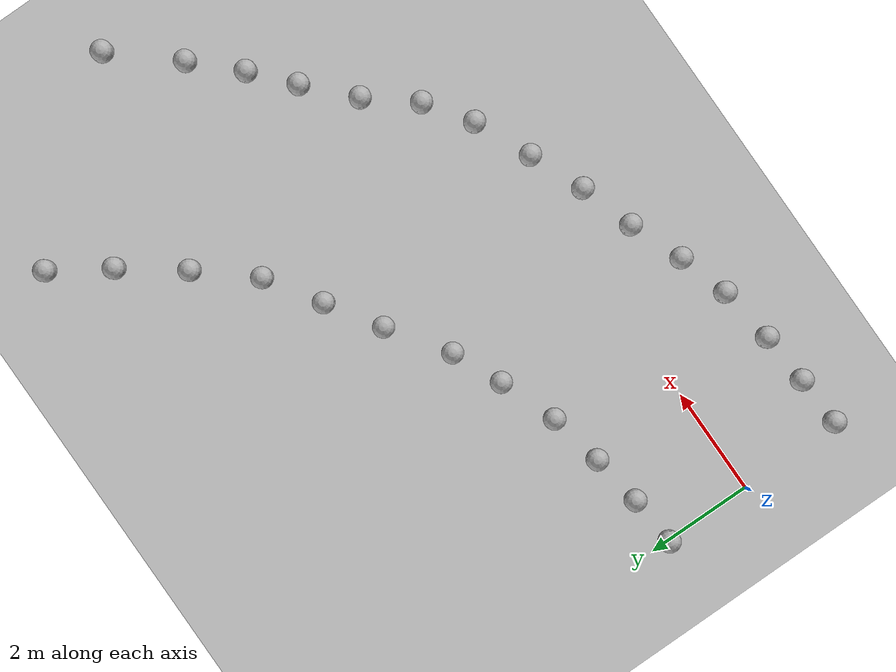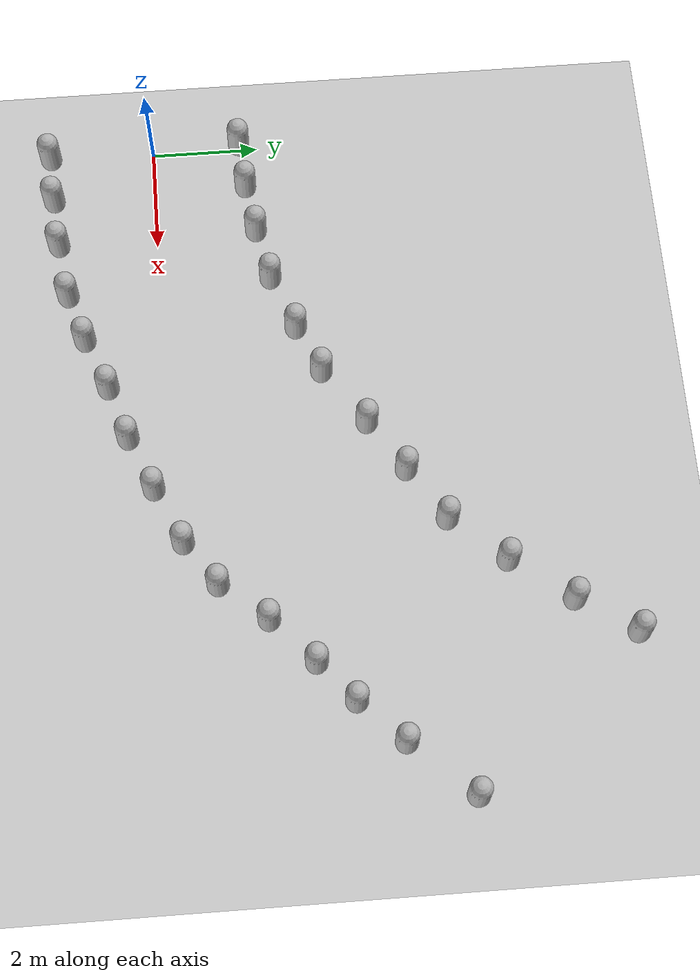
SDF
<sdf version='1.10'>
  <world name='empty'>
    <physics name='1ms' type='ignored'>
      <max_step_size>0.001</max_step_size>
      <real_time_factor>1</real_time_factor>
      <real_time_update_rate>1000</real_time_update_rate>
    </physics>
    <plugin name='gz::sim::systems::Physics' filename='gz-sim-physics-system'/>
    <plugin name='gz::sim::systems::UserCommands' filename='gz-sim-user-commands-system'/>
    <plugin name='gz::sim::systems::SceneBroadcaster' filename='gz-sim-scene-broadcaster-system'/>
    <plugin name='gz::sim::systems::Sensors' filename='gz-sim-sensors-system'>
      <render_engine>ogre2</render_engine>
    </plugin>
    <plugin name='gz::sim::systems::Contact' filename='gz-sim-contact-system'/>
    <gravity>0 0 -9.8000000000000007</gravity>
    <magnetic_field>5.5644999999999998e-06 2.2875799999999999e-05 -4.2388400000000002e-05</magnetic_field>
    <atmosphere type='adiabatic'/>
    <scene>
      <ambient>0.400000006 0.400000006 0.400000006 1</ambient>
      <background>0.699999988 0.699999988 0.699999988 1</background>
      <shadows>true</shadows>
    </scene>
    <model name='ground_plane'>
      <static>true</static>
      <link name='link'>
        <collision name='collision'>
          <geometry>
            <plane>
              <normal>0 0 1</normal>
              <size>100 100</size>
            </plane>
          </geometry>
          <surface>
            <friction>
              <ode/>
            </friction>
            <bounce/>
            <contact/>
          </surface>
        </collision>
        <visual name='visual'>
          <geometry>
            <plane>
              <normal>0 0 1</normal>
              <size>100 100</size>
            </plane>
          </geometry>
          <material>
            <ambient>0.800000012 0.800000012 0.800000012 1</ambient>
            <diffuse>0.800000012 0.800000012 0.800000012 1</diffuse>
            <specular>0.800000012 0.800000012 0.800000012 1</specular>
          </material>
        </visual>
        <pose>0 0 0 0 0 0</pose>
        <inertial>
          <pose>0 0 0 0 0 0</pose>
          <mass>1</mass>
          <inertia>
            <ixx>1</ixx>
            <ixy>0</ixy>
            <ixz>0</ixz>
            <iyy>1</iyy>
            <iyz>0</iyz>
            <izz>1</izz>
          </inertia>
        </inertial>
        <enable_wind>false</enable_wind>
      </link>
      <pose>0 0 0 0 0 0</pose>
      <self_collide>false</self_collide>
    </model>
    <model name='capsule'>
      <pose>0.0079092960798012868 1.6543923129827109 0.499999999902001 0 0 0</pose>
      <link name='capsule_link'>
        <inertial>
          <inertia>
            <ixx>0.074153999999999998</ixx>
            <ixy>0</ixy>
            <ixz>0</ixz>
            <iyy>0.074153999999999998</iyy>
            <iyz>0</iyz>
            <izz>0.018769000000000001</izz>
          </inertia>
          <mass>1</mass>
          <pose>0 0 0 0 0 0</pose>
        </inertial>
        <collision name='capsule_collision'>
          <geometry>
            <capsule>
              <radius>0.20000000000000001</radius>
              <length>0.59999999999999998</length>
            </capsule>
          </geometry>
          <surface>
            <friction>
              <ode/>
            </friction>
            <bounce/>
            <contact/>
          </surface>
        </collision>
        <visual name='capsule_visual'>
          <geometry>
            <capsule>
              <radius>0.20000000000000001</radius>
              <length>0.59999999999999998</length>
            </capsule>
          </geometry>
          <material>
            <ambient>0.300000012 0.300000012 0.300000012 1</ambient>
            <diffuse>0.699999988 0.699999988 0.699999988 1</diffuse>
            <specular>1 1 1 1</specular>
          </material>
        </visual>
        <pose>0 0 0 0 0 0</pose>
        <enable_wind>false</enable_wind>
      </link>
      <static>false</static>
      <self_collide>false</self_collide>
    </model>
    <model name='capsule_0'>
      <pose>0.94512511227716023 1.733680784439902 0.499999999902001 0 0 0</pose>
      <link name='capsule_link'>
        <inertial>
          <inertia>
            <ixx>0.074153999999999998</ixx>
            <ixy>0</ixy>
            <ixz>0</ixz>
            <iyy>0.074153999999999998</iyy>
            <iyz>0</iyz>
            <izz>0.018769000000000001</izz>
          </inertia>
          <mass>1</mass>
          <pose>0 0 0 0 0 0</pose>
        </inertial>
        <collision name='capsule_collision'>
          <geometry>
            <capsule>
              <radius>0.20000000000000001</radius>
              <length>0.59999999999999998</length>
            </capsule>
          </geometry>
          <surface>
            <friction>
              <ode/>
            </friction>
            <bounce/>
            <contact/>
          </surface>
        </collision>
        <visual name='capsule_visual'>
          <geometry>
            <capsule>
              <radius>0.20000000000000001</radius>
              <length>0.59999999999999998</length>
            </capsule>
          </geometry>
          <material>
            <ambient>0.300000012 0.300000012 0.300000012 1</ambient>
            <diffuse>0.699999988 0.699999988 0.699999988 1</diffuse>
            <specular>1 1 1 1</specular>
          </material>
        </visual>
        <pose>0 0 0 0 0 0</pose>
        <enable_wind>false</enable_wind>
      </link>
      <static>false</static>
      <self_collide>false</self_collide>
    </model>
    <model name='capsule_1'>
      <pose>1.9187066357914726 1.8748929251924817 0.499999999902001 0 0 0</pose>
      <link name='capsule_link'>
        <inertial>
          <inertia>
            <ixx>0.074153999999999998</ixx>
            <ixy>0</ixy>
            <ixz>0</ixz>
            <iyy>0.074153999999999998</iyy>
            <iyz>0</iyz>
            <izz>0.018769000000000001</izz>
          </inertia>
          <mass>1</mass>
          <pose>0 0 0 0 0 0</pose>
        </inertial>
        <collision name='capsule_collision'>
          <geometry>
            <capsule>
              <radius>0.20000000000000001</radius>
              <length>0.59999999999999998</length>
            </capsule>
          </geometry>
          <surface>
            <friction>
              <ode/>
            </friction>
            <bounce/>
            <contact/>
          </surface>
        </collision>
        <visual name='capsule_visual'>
          <geometry>
            <capsule>
              <radius>0.20000000000000001</radius>
              <length>0.59999999999999998</length>
            </capsule>
          </geometry>
          <material>
            <ambient>0.300000012 0.300000012 0.300000012 1</ambient>
            <diffuse>0.699999988 0.699999988 0.699999988 1</diffuse>
            <specular>1 1 1 1</specular>
          </material>
        </visual>
        <pose>0 0 0 0 0 0</pose>
        <enable_wind>false</enable_wind>
      </link>
      <static>false</static>
      <self_collide>false</self_collide>
    </model>
    <model name='capsule_2'>
      <pose>0.071174021114242758 -1.9452252499138223 0.499999999902001 0 0 0</pose>
      <link name='capsule_link'>
        <inertial>
          <inertia>
            <ixx>0.074153999999999998</ixx>
            <ixy>0</ixy>
            <ixz>0</ixz>
            <iyy>0.074153999999999998</iyy>
            <iyz>0</iyz>
            <izz>0.018769000000000001</izz>
          </inertia>
          <mass>1</mass>
          <pose>0 0 0 0 0 0</pose>
        </inertial>
        <collision name='capsule_collision'>
          <geometry>
            <capsule>
              <radius>0.20000000000000001</radius>
              <length>0.59999999999999998</length>
            </capsule>
          </geometry>
          <surface>
            <friction>
              <ode/>
            </friction>
            <bounce/>
            <contact/>
          </surface>
        </collision>
        <visual name='capsule_visual'>
          <geometry>
            <capsule>
              <radius>0.20000000000000001</radius>
              <length>0.59999999999999998</length>
            </capsule>
          </geometry>
          <material>
            <ambient>0.300000012 0.300000012 0.300000012 1</ambient>
            <diffuse>0.699999988 0.699999988 0.699999988 1</diffuse>
            <specular>1 1 1 1</specular>
          </material>
        </visual>
        <pose>0 0 0 0 0 0</pose>
        <enable_wind>false</enable_wind>
      </link>
      <static>false</static>
      <self_collide>false</self_collide>
    </model>
    <model name='capsule_3'>
      <pose>1.0079840875515076 -1.8969727998720727 0.499999999902001 0 0 0</pose>
      <link name='capsule_link'>
        <inertial>
          <inertia>
            <ixx>0.074153999999999998</ixx>
            <ixy>0</ixy>
            <ixz>0</ixz>
            <iyy>0.074153999999999998</iyy>
            <iyz>0</iyz>
            <izz>0.018769000000000001</izz>
          </inertia>
          <mass>1</mass>
          <pose>0 0 0 0 0 0</pose>
        </inertial>
        <collision name='capsule_collision'>
          <geometry>
            <capsule>
              <radius>0.20000000000000001</radius>
              <length>0.59999999999999998</length>
            </capsule>
          </geometry>
          <surface>
            <friction>
              <ode/>
            </friction>
            <bounce/>
            <contact/>
          </surface>
        </collision>
        <visual name='capsule_visual'>
          <geometry>
            <capsule>
              <radius>0.20000000000000001</radius>
              <length>0.59999999999999998</length>
            </capsule>
          </geometry>
          <material>
            <ambient>0.300000012 0.300000012 0.300000012 1</ambient>
            <diffuse>0.699999988 0.699999988 0.699999988 1</diffuse>
            <specular>1 1 1 1</specular>
          </material>
        </visual>
        <pose>0 0 0 0 0 0</pose>
        <enable_wind>false</enable_wind>
      </link>
      <static>false</static>
      <self_collide>false</self_collide>
    </model>
    <model name='capsule_4'>
      <pose>1.9770966511890031 -1.8243848592570489 0.499999999902001 0 0 0</pose>
      <link name='capsule_link'>
        <inertial>
          <inertia>
            <ixx>0.074153999999999998</ixx>
            <ixy>0</ixy>
            <ixz>0</ixz>
            <iyy>0.074153999999999998</iyy>
            <iyz>0</iyz>
            <izz>0.018769000000000001</izz>
          </inertia>
          <mass>1</mass>
          <pose>0 0 0 0 0 0</pose>
        </inertial>
        <collision name='capsule_collision'>
          <geometry>
            <capsule>
              <radius>0.20000000000000001</radius>
              <length>0.59999999999999998</length>
            </capsule>
          </geometry>
          <surface>
            <friction>
              <ode/>
            </friction>
            <bounce/>
            <contact/>
          </surface>
        </collision>
        <visual name='capsule_visual'>
          <geometry>
            <capsule>
              <radius>0.20000000000000001</radius>
              <length>0.59999999999999998</length>
            </capsule>
          </geometry>
          <material>
            <ambient>0.300000012 0.300000012 0.300000012 1</ambient>
            <diffuse>0.699999988 0.699999988 0.699999988 1</diffuse>
            <specular>1 1 1 1</specular>
          </material>
        </visual>
        <pose>0 0 0 0 0 0</pose>
        <enable_wind>false</enable_wind>
      </link>
      <static>false</static>
      <self_collide>false</self_collide>
    </model>
    <model name='capsule_5'>
      <pose>2.9418799014673973 2.0835173150101385 0.499999999902001 0 0 0</pose>
      <link name='capsule_link'>
        <inertial>
          <inertia>
            <ixx>0.074153999999999998</ixx>
            <ixy>0</ixy>
            <ixz>0</ixz>
            <iyy>0.074153999999999998</iyy>
            <iyz>0</iyz>
            <izz>0.018769000000000001</izz>
          </inertia>
          <mass>1</mass>
          <pose>0 0 0 0 0 0</pose>
        </inertial>
        <collision name='capsule_collision'>
          <geometry>
            <capsule>
              <radius>0.20000000000000001</radius>
              <length>0.59999999999999998</length>
            </capsule>
          </geometry>
          <surface>
            <friction>
              <ode/>
            </friction>
            <bounce/>
            <contact/>
          </surface>
        </collision>
        <visual name='capsule_visual'>
          <geometry>
            <capsule>
              <radius>0.20000000000000001</radius>
              <length>0.59999999999999998</length>
            </capsule>
          </geometry>
          <material>
            <ambient>0.300000012 0.300000012 0.300000012 1</ambient>
            <diffuse>0.699999988 0.699999988 0.699999988 1</diffuse>
            <specular>1 1 1 1</specular>
          </material>
        </visual>
        <pose>0 0 0 0 0 0</pose>
        <enable_wind>false</enable_wind>
      </link>
      <static>false</static>
      <self_collide>false</self_collide>
    </model>
    <model name='capsule_6'>
      <pose>3.0534784039541742 -1.6741857712264725 0.499999999902001 0 0 0</pose>
      <link name='capsule_link'>
        <inertial>
          <inertia>
            <ixx>0.074153999999999998</ixx>
            <ixy>0</ixy>
            <ixz>0</ixz>
            <iyy>0.074153999999999998</iyy>
            <iyz>0</iyz>
            <izz>0.018769000000000001</izz>
          </inertia>
          <mass>1</mass>
          <pose>0 0 0 0 0 0</pose>
        </inertial>
        <collision name='capsule_collision'>
          <geometry>
            <capsule>
              <radius>0.20000000000000001</radius>
              <length>0.59999999999999998</length>
            </capsule>
          </geometry>
          <surface>
            <friction>
              <ode/>
            </friction>
            <bounce/>
            <contact/>
          </surface>
        </collision>
        <visual name='capsule_visual'>
          <geometry>
            <capsule>
              <radius>0.20000000000000001</radius>
              <length>0.59999999999999998</length>
            </capsule>
          </geometry>
          <material>
            <ambient>0.300000012 0.300000012 0.300000012 1</ambient>
            <diffuse>0.699999988 0.699999988 0.699999988 1</diffuse>
            <specular>1 1 1 1</specular>
          </material>
        </visual>
        <pose>0 0 0 0 0 0</pose>
        <enable_wind>false</enable_wind>
      </link>
      <static>false</static>
      <self_collide>false</self_collide>
    </model>
    <model name='capsule_7'>
      <pose>4.0094379070136714 2.4839232532498823 0.499999999902001 0 0 0</pose>
      <link name='capsule_link'>
        <inertial>
          <inertia>
            <ixx>0.074153999999999998</ixx>
            <ixy>0</ixy>
            <ixz>0</ixz>
            <iyy>0.074153999999999998</iyy>
            <iyz>0</iyz>
            <izz>0.018769000000000001</izz>
          </inertia>
          <mass>1</mass>
          <pose>0 0 0 0 0 0</pose>
        </inertial>
        <collision name='capsule_collision'>
          <geometry>
            <capsule>
              <radius>0.20000000000000001</radius>
              <length>0.59999999999999998</length>
            </capsule>
          </geometry>
          <surface>
            <friction>
              <ode/>
            </friction>
            <bounce/>
            <contact/>
          </surface>
        </collision>
        <visual name='capsule_visual'>
          <geometry>
            <capsule>
              <radius>0.20000000000000001</radius>
              <length>0.59999999999999998</length>
            </capsule>
          </geometry>
          <material>
            <ambient>0.300000012 0.300000012 0.300000012 1</ambient>
            <diffuse>0.699999988 0.699999988 0.699999988 1</diffuse>
            <specular>1 1 1 1</specular>
          </material>
        </visual>
        <pose>0 0 0 0 0 0</pose>
        <enable_wind>false</enable_wind>
      </link>
      <static>false</static>
      <self_collide>false</self_collide>
    </model>
    <model name='capsule_8'>
      <pose>3.9933107917520312 -1.3831246201174401 0.499999999902001 0 0 0</pose>
      <link name='capsule_link'>
        <inertial>
          <inertia>
            <ixx>0.074153999999999998</ixx>
            <ixy>0</ixy>
            <ixz>0</ixz>
            <iyy>0.074153999999999998</iyy>
            <iyz>0</iyz>
            <izz>0.018769000000000001</izz>
          </inertia>
          <mass>1</mass>
          <pose>0 0 0 0 0 0</pose>
        </inertial>
        <collision name='capsule_collision'>
          <geometry>
            <capsule>
              <radius>0.20000000000000001</radius>
              <length>0.59999999999999998</length>
            </capsule>
          </geometry>
          <surface>
            <friction>
              <ode/>
            </friction>
            <bounce/>
            <contact/>
          </surface>
        </collision>
        <visual name='capsule_visual'>
          <geometry>
            <capsule>
              <radius>0.20000000000000001</radius>
              <length>0.59999999999999998</length>
            </capsule>
          </geometry>
          <material>
            <ambient>0.300000012 0.300000012 0.300000012 1</ambient>
            <diffuse>0.699999988 0.699999988 0.699999988 1</diffuse>
            <specular>1 1 1 1</specular>
          </material>
        </visual>
        <pose>0 0 0 0 0 0</pose>
        <enable_wind>false</enable_wind>
      </link>
      <static>false</static>
      <self_collide>false</self_collide>
    </model>
    <model name='capsule_9'>
      <pose>4.9272845839928587 2.8907733621151106 0.499999999902001 0 0 0</pose>
      <link name='capsule_link'>
        <inertial>
          <inertia>
            <ixx>0.074153999999999998</ixx>
            <ixy>0</ixy>
            <ixz>0</ixz>
            <iyy>0.074153999999999998</iyy>
            <iyz>0</iyz>
            <izz>0.018769000000000001</izz>
          </inertia>
          <mass>1</mass>
          <pose>0 0 0 0 0 0</pose>
        </inertial>
        <collision name='capsule_collision'>
          <geometry>
            <capsule>
              <radius>0.20000000000000001</radius>
              <length>0.59999999999999998</length>
            </capsule>
          </geometry>
          <surface>
            <friction>
              <ode/>
            </friction>
            <bounce/>
            <contact/>
          </surface>
        </collision>
        <visual name='capsule_visual'>
          <geometry>
            <capsule>
              <radius>0.20000000000000001</radius>
              <length>0.59999999999999998</length>
            </capsule>
          </geometry>
          <material>
            <ambient>0.300000012 0.300000012 0.300000012 1</ambient>
            <diffuse>0.699999988 0.699999988 0.699999988 1</diffuse>
            <specular>1 1 1 1</specular>
          </material>
        </visual>
        <pose>0 0 0 0 0 0</pose>
        <enable_wind>false</enable_wind>
      </link>
      <static>false</static>
      <self_collide>false</self_collide>
    </model>
    <model name='capsule_10'>
      <pose>4.9840762807257226 -0.98658179176943239 0.499999999902001 0 0 0</pose>
      <link name='capsule_link'>
        <inertial>
          <inertia>
            <ixx>0.074153999999999998</ixx>
            <ixy>0</ixy>
            <ixz>0</ixz>
            <iyy>0.074153999999999998</iyy>
            <iyz>0</iyz>
            <izz>0.018769000000000001</izz>
          </inertia>
          <mass>1</mass>
          <pose>0 0 0 0 0 0</pose>
        </inertial>
        <collision name='capsule_collision'>
          <geometry>
            <capsule>
              <radius>0.20000000000000001</radius>
              <length>0.59999999999999998</length>
            </capsule>
          </geometry>
          <surface>
            <friction>
              <ode/>
            </friction>
            <bounce/>
            <contact/>
          </surface>
        </collision>
        <visual name='capsule_visual'>
          <geometry>
            <capsule>
              <radius>0.20000000000000001</radius>
              <length>0.59999999999999998</length>
            </capsule>
          </geometry>
          <material>
            <ambient>0.300000012 0.300000012 0.300000012 1</ambient>
            <diffuse>0.699999988 0.699999988 0.699999988 1</diffuse>
            <specular>1 1 1 1</specular>
          </material>
        </visual>
        <pose>0 0 0 0 0 0</pose>
        <enable_wind>false</enable_wind>
      </link>
      <static>false</static>
      <self_collide>false</self_collide>
    </model>
    <model name='capsule_11'>
      <pose>5.9982967455937626 3.6300361546412354 0.499999999902001 0 0 0</pose>
      <link name='capsule_link'>
        <inertial>
          <inertia>
            <ixx>0.074153999999999998</ixx>
            <ixy>0</ixy>
            <ixz>0</ixz>
            <iyy>0.074153999999999998</iyy>
            <iyz>0</iyz>
            <izz>0.018769000000000001</izz>
          </inertia>
          <mass>1</mass>
          <pose>0 0 0 0 0 0</pose>
        </inertial>
        <collision name='capsule_collision'>
          <geometry>
            <capsule>
              <radius>0.20000000000000001</radius>
              <length>0.59999999999999998</length>
            </capsule>
          </geometry>
          <surface>
            <friction>
              <ode/>
            </friction>
            <bounce/>
            <contact/>
          </surface>
        </collision>
        <visual name='capsule_visual'>
          <geometry>
            <capsule>
              <radius>0.20000000000000001</radius>
              <length>0.59999999999999998</length>
            </capsule>
          </geometry>
          <material>
            <ambient>0.300000012 0.300000012 0.300000012 1</ambient>
            <diffuse>0.699999988 0.699999988 0.699999988 1</diffuse>
            <specular>1 1 1 1</specular>
          </material>
        </visual>
        <pose>0 0 0 0 0 0</pose>
        <enable_wind>false</enable_wind>
      </link>
      <static>false</static>
      <self_collide>false</self_collide>
    </model>
    <model name='capsule_12'>
      <pose>5.9997241077704127 -0.66053042265015316 0.499999999902001 0 0 0</pose>
      <link name='capsule_link'>
        <inertial>
          <inertia>
            <ixx>0.074153999999999998</ixx>
            <ixy>0</ixy>
            <ixz>0</ixz>
            <iyy>0.074153999999999998</iyy>
            <iyz>0</iyz>
            <izz>0.018769000000000001</izz>
          </inertia>
          <mass>1</mass>
          <pose>0 0 0 0 0 0</pose>
        </inertial>
        <collision name='capsule_collision'>
          <geometry>
            <capsule>
              <radius>0.20000000000000001</radius>
              <length>0.59999999999999998</length>
            </capsule>
          </geometry>
          <surface>
            <friction>
              <ode/>
            </friction>
            <bounce/>
            <contact/>
          </surface>
        </collision>
        <visual name='capsule_visual'>
          <geometry>
            <capsule>
              <radius>0.20000000000000001</radius>
              <length>0.59999999999999998</length>
            </capsule>
          </geometry>
          <material>
            <ambient>0.300000012 0.300000012 0.300000012 1</ambient>
            <diffuse>0.699999988 0.699999988 0.699999988 1</diffuse>
            <specular>1 1 1 1</specular>
          </material>
        </visual>
        <pose>0 0 0 0 0 0</pose>
        <enable_wind>false</enable_wind>
      </link>
      <static>false</static>
      <self_collide>false</self_collide>
    </model>
    <model name='capsule_13'>
      <pose>6.9596569506124863 4.2527939600757358 0.499999999902001 0 0 0</pose>
      <link name='capsule_link'>
        <inertial>
          <inertia>
            <ixx>0.074153999999999998</ixx>
            <ixy>0</ixy>
            <ixz>0</ixz>
            <iyy>0.074153999999999998</iyy>
            <iyz>0</iyz>
            <izz>0.018769000000000001</izz>
          </inertia>
          <mass>1</mass>
          <pose>0 0 0 0 0 0</pose>
        </inertial>
        <collision name='capsule_collision'>
          <geometry>
            <capsule>
              <radius>0.20000000000000001</radius>
              <length>0.59999999999999998</length>
            </capsule>
          </geometry>
          <surface>
            <friction>
              <ode/>
            </friction>
            <bounce/>
            <contact/>
          </surface>
        </collision>
        <visual name='capsule_visual'>
          <geometry>
            <capsule>
              <radius>0.20000000000000001</radius>
              <length>0.59999999999999998</length>
            </capsule>
          </geometry>
          <material>
            <ambient>0.300000012 0.300000012 0.300000012 1</ambient>
            <diffuse>0.699999988 0.699999988 0.699999988 1</diffuse>
            <specular>1 1 1 1</specular>
          </material>
        </visual>
        <pose>0 0 0 0 0 0</pose>
        <enable_wind>false</enable_wind>
      </link>
      <static>false</static>
      <self_collide>false</self_collide>
    </model>
    <model name='capsule_14'>
      <pose>7.0108881171063908 -0.23596897892512203 0.499999999902001 0 0 0</pose>
      <link name='capsule_link'>
        <inertial>
          <inertia>
            <ixx>0.074153999999999998</ixx>
            <ixy>0</ixy>
            <ixz>0</ixz>
            <iyy>0.074153999999999998</iyy>
            <iyz>0</iyz>
            <izz>0.018769000000000001</izz>
          </inertia>
          <mass>1</mass>
          <pose>0 0 0 0 0 0</pose>
        </inertial>
        <collision name='capsule_collision'>
          <geometry>
            <capsule>
              <radius>0.20000000000000001</radius>
              <length>0.59999999999999998</length>
            </capsule>
          </geometry>
          <surface>
            <friction>
              <ode/>
            </friction>
            <bounce/>
            <contact/>
          </surface>
        </collision>
        <visual name='capsule_visual'>
          <geometry>
            <capsule>
              <radius>0.20000000000000001</radius>
              <length>0.59999999999999998</length>
            </capsule>
          </geometry>
          <material>
            <ambient>0.300000012 0.300000012 0.300000012 1</ambient>
            <diffuse>0.699999988 0.699999988 0.699999988 1</diffuse>
            <specular>1 1 1 1</specular>
          </material>
        </visual>
        <pose>0 0 0 0 0 0</pose>
        <enable_wind>false</enable_wind>
      </link>
      <static>false</static>
      <self_collide>false</self_collide>
    </model>
    <model name='capsule_15'>
      <pose>7.9441173175420836 4.8912118331948875 0.499999999902001 0 0 0</pose>
      <link name='capsule_link'>
        <inertial>
          <inertia>
            <ixx>0.074153999999999998</ixx>
            <ixy>0</ixy>
            <ixz>0</ixz>
            <iyy>0.074153999999999998</iyy>
            <iyz>0</iyz>
            <izz>0.018769000000000001</izz>
          </inertia>
          <mass>1</mass>
          <pose>0 0 0 0 0 0</pose>
        </inertial>
        <collision name='capsule_collision'>
          <geometry>
            <capsule>
              <radius>0.20000000000000001</radius>
              <length>0.59999999999999998</length>
            </capsule>
          </geometry>
          <surface>
            <friction>
              <ode/>
            </friction>
            <bounce/>
            <contact/>
          </surface>
        </collision>
        <visual name='capsule_visual'>
          <geometry>
            <capsule>
              <radius>0.20000000000000001</radius>
              <length>0.59999999999999998</length>
            </capsule>
          </geometry>
          <material>
            <ambient>0.300000012 0.300000012 0.300000012 1</ambient>
            <diffuse>0.699999988 0.699999988 0.699999988 1</diffuse>
            <specular>1 1 1 1</specular>
          </material>
        </visual>
        <pose>0 0 0 0 0 0</pose>
        <enable_wind>false</enable_wind>
      </link>
      <static>false</static>
      <self_collide>false</self_collide>
    </model>
    <model name='capsule_16'>
      <pose>8.0572184014874164 0.23701005670510478 0.499999999902001 0 0 0</pose>
      <link name='capsule_link'>
        <inertial>
          <inertia>
            <ixx>0.074153999999999998</ixx>
            <ixy>0</ixy>
            <ixz>0</ixz>
            <iyy>0.074153999999999998</iyy>
            <iyz>0</iyz>
            <izz>0.018769000000000001</izz>
          </inertia>
          <mass>1</mass>
          <pose>0 0 0 0 0 0</pose>
        </inertial>
        <collision name='capsule_collision'>
          <geometry>
            <capsule>
              <radius>0.20000000000000001</radius>
              <length>0.59999999999999998</length>
            </capsule>
          </geometry>
          <surface>
            <friction>
              <ode/>
            </friction>
            <bounce/>
            <contact/>
          </surface>
        </collision>
        <visual name='capsule_visual'>
          <geometry>
            <capsule>
              <radius>0.20000000000000001</radius>
              <length>0.59999999999999998</length>
            </capsule>
          </geometry>
          <material>
            <ambient>0.300000012 0.300000012 0.300000012 1</ambient>
            <diffuse>0.699999988 0.699999988 0.699999988 1</diffuse>
            <specular>1 1 1 1</specular>
          </material>
        </visual>
        <pose>0 0 0 0 0 0</pose>
        <enable_wind>false</enable_wind>
      </link>
      <static>false</static>
      <self_collide>false</self_collide>
    </model>
    <model name='capsule_17'>
      <pose>8.784491633246251 5.8662201830098777 0.499999999902001 0 0 0</pose>
      <link name='capsule_link'>
        <inertial>
          <inertia>
            <ixx>0.074153999999999998</ixx>
            <ixy>0</ixy>
            <ixz>0</ixz>
            <iyy>0.074153999999999998</iyy>
            <iyz>0</iyz>
            <izz>0.018769000000000001</izz>
          </inertia>
          <mass>1</mass>
          <pose>0 0 0 0 0 0</pose>
        </inertial>
        <collision name='capsule_collision'>
          <geometry>
            <capsule>
              <radius>0.20000000000000001</radius>
              <length>0.59999999999999998</length>
            </capsule>
          </geometry>
          <surface>
            <friction>
              <ode/>
            </friction>
            <bounce/>
            <contact/>
          </surface>
        </collision>
        <visual name='capsule_visual'>
          <geometry>
            <capsule>
              <radius>0.20000000000000001</radius>
              <length>0.59999999999999998</length>
            </capsule>
          </geometry>
          <material>
            <ambient>0.300000012 0.300000012 0.300000012 1</ambient>
            <diffuse>0.699999988 0.699999988 0.699999988 1</diffuse>
            <specular>1 1 1 1</specular>
          </material>
        </visual>
        <pose>0 0 0 0 0 0</pose>
        <enable_wind>false</enable_wind>
      </link>
      <static>false</static>
      <self_collide>false</self_collide>
    </model>
    <model name='capsule_18'>
      <pose>8.8740413969647456 0.80734262371132193 0.499999999902001 0 0 0</pose>
      <link name='capsule_link'>
        <inertial>
          <inertia>
            <ixx>0.074153999999999998</ixx>
            <ixy>0</ixy>
            <ixz>0</ixz>
            <iyy>0.074153999999999998</iyy>
            <iyz>0</iyz>
            <izz>0.018769000000000001</izz>
          </inertia>
          <mass>1</mass>
          <pose>0 0 0 0 0 0</pose>
        </inertial>
        <collision name='capsule_collision'>
          <geometry>
            <capsule>
              <radius>0.20000000000000001</radius>
              <length>0.59999999999999998</length>
            </capsule>
          </geometry>
          <surface>
            <friction>
              <ode/>
            </friction>
            <bounce/>
            <contact/>
          </surface>
        </collision>
        <visual name='capsule_visual'>
          <geometry>
            <capsule>
              <radius>0.20000000000000001</radius>
              <length>0.59999999999999998</length>
            </capsule>
          </geometry>
          <material>
            <ambient>0.300000012 0.300000012 0.300000012 1</ambient>
            <diffuse>0.699999988 0.699999988 0.699999988 1</diffuse>
            <specular>1 1 1 1</specular>
          </material>
        </visual>
        <pose>0 0 0 0 0 0</pose>
        <enable_wind>false</enable_wind>
      </link>
      <static>false</static>
      <self_collide>false</self_collide>
    </model>
    <model name='capsule_19'>
      <pose>9.565480298544724 1.6502451150646742 0.499999999902001 0 0 0</pose>
      <link name='capsule_link'>
        <inertial>
          <inertia>
            <ixx>0.074153999999999998</ixx>
            <ixy>0</ixy>
            <ixz>0</ixz>
            <iyy>0.074153999999999998</iyy>
            <iyz>0</iyz>
            <izz>0.018769000000000001</izz>
          </inertia>
          <mass>1</mass>
          <pose>0 0 0 0 0 0</pose>
        </inertial>
        <collision name='capsule_collision'>
          <geometry>
            <capsule>
              <radius>0.20000000000000001</radius>
              <length>0.59999999999999998</length>
            </capsule>
          </geometry>
          <surface>
            <friction>
              <ode/>
            </friction>
            <bounce/>
            <contact/>
          </surface>
        </collision>
        <visual name='capsule_visual'>
          <geometry>
            <capsule>
              <radius>0.20000000000000001</radius>
              <length>0.59999999999999998</length>
            </capsule>
          </geometry>
          <material>
            <ambient>0.300000012 0.300000012 0.300000012 1</ambient>
            <diffuse>0.699999988 0.699999988 0.699999988 1</diffuse>
            <specular>1 1 1 1</specular>
          </material>
        </visual>
        <pose>0 0 0 0 0 0</pose>
        <enable_wind>false</enable_wind>
      </link>
      <static>false</static>
      <self_collide>false</self_collide>
    </model>
    <model name='capsule_20'>
      <pose>9.5760287630693099 6.9376943894907726 0.499999999902001 0 0 0</pose>
      <link name='capsule_link'>
        <inertial>
          <inertia>
            <ixx>0.074153999999999998</ixx>
            <ixy>0</ixy>
            <ixz>0</ixz>
            <iyy>0.074153999999999998</iyy>
            <iyz>0</iyz>
            <izz>0.018769000000000001</izz>
          </inertia>
          <mass>1</mass>
          <pose>0 0 0 0 0 0</pose>
        </inertial>
        <collision name='capsule_collision'>
          <geometry>
            <capsule>
              <radius>0.20000000000000001</radius>
              <length>0.59999999999999998</length>
            </capsule>
          </geometry>
          <surface>
            <friction>
              <ode/>
            </friction>
            <bounce/>
            <contact/>
          </surface>
        </collision>
        <visual name='capsule_visual'>
          <geometry>
            <capsule>
              <radius>0.20000000000000001</radius>
              <length>0.59999999999999998</length>
            </capsule>
          </geometry>
          <material>
            <ambient>0.300000012 0.300000012 0.300000012 1</ambient>
            <diffuse>0.699999988 0.699999988 0.699999988 1</diffuse>
            <specular>1 1 1 1</specular>
          </material>
        </visual>
        <pose>0 0 0 0 0 0</pose>
        <enable_wind>false</enable_wind>
      </link>
      <static>false</static>
      <self_collide>false</self_collide>
    </model>
    <model name='capsule_21'>
      <pose>10.381177677795568 2.4105502564392642 0.499999999902001 0 0 0</pose>
      <link name='capsule_link'>
        <inertial>
          <inertia>
            <ixx>0.074153999999999998</ixx>
            <ixy>0</ixy>
            <ixz>0</ixz>
            <iyy>0.074153999999999998</iyy>
            <iyz>0</iyz>
            <izz>0.018769000000000001</izz>
          </inertia>
          <mass>1</mass>
          <pose>0 0 0 0 0 0</pose>
        </inertial>
        <collision name='capsule_collision'>
          <geometry>
            <capsule>
              <radius>0.20000000000000001</radius>
              <length>0.59999999999999998</length>
            </capsule>
          </geometry>
          <surface>
            <friction>
              <ode/>
            </friction>
            <bounce/>
            <contact/>
          </surface>
        </collision>
        <visual name='capsule_visual'>
          <geometry>
            <capsule>
              <radius>0.20000000000000001</radius>
              <length>0.59999999999999998</length>
            </capsule>
          </geometry>
          <material>
            <ambient>0.300000012 0.300000012 0.300000012 1</ambient>
            <diffuse>0.699999988 0.699999988 0.699999988 1</diffuse>
            <specular>1 1 1 1</specular>
          </material>
        </visual>
        <pose>0 0 0 0 0 0</pose>
        <enable_wind>false</enable_wind>
      </link>
      <static>false</static>
      <self_collide>false</self_collide>
    </model>
    <model name='capsule_22'>
      <pose>11.104713062926447 3.0382462982686742 0.499999999902001 0 0 0</pose>
      <link name='capsule_link'>
        <inertial>
          <inertia>
            <ixx>0.074153999999999998</ixx>
            <ixy>0</ixy>
            <ixz>0</ixz>
            <iyy>0.074153999999999998</iyy>
            <iyz>0</iyz>
            <izz>0.018769000000000001</izz>
          </inertia>
          <mass>1</mass>
          <pose>0 0 0 0 0 0</pose>
        </inertial>
        <collision name='capsule_collision'>
          <geometry>
            <capsule>
              <radius>0.20000000000000001</radius>
              <length>0.59999999999999998</length>
            </capsule>
          </geometry>
          <surface>
            <friction>
              <ode/>
            </friction>
            <bounce/>
            <contact/>
          </surface>
        </collision>
        <visual name='capsule_visual'>
          <geometry>
            <capsule>
              <radius>0.20000000000000001</radius>
              <length>0.59999999999999998</length>
            </capsule>
          </geometry>
          <material>
            <ambient>0.300000012 0.300000012 0.300000012 1</ambient>
            <diffuse>0.699999988 0.699999988 0.699999988 1</diffuse>
            <specular>1 1 1 1</specular>
          </material>
        </visual>
        <pose>0 0 0 0 0 0</pose>
        <enable_wind>false</enable_wind>
      </link>
      <static>false</static>
      <self_collide>false</self_collide>
    </model>
    <model name='capsule_23'>
      <pose>11.863521378822202 3.8158140797079758 0.499999999902001 0 0 0</pose>
      <link name='capsule_link'>
        <inertial>
          <inertia>
            <ixx>0.074153999999999998</ixx>
            <ixy>0</ixy>
            <ixz>0</ixz>
            <iyy>0.074153999999999998</iyy>
            <iyz>0</iyz>
            <izz>0.018769000000000001</izz>
          </inertia>
          <mass>1</mass>
          <pose>0 0 0 0 0 0</pose>
        </inertial>
        <collision name='capsule_collision'>
          <geometry>
            <capsule>
              <radius>0.20000000000000001</radius>
              <length>0.59999999999999998</length>
            </capsule>
          </geometry>
          <surface>
            <friction>
              <ode/>
            </friction>
            <bounce/>
            <contact/>
          </surface>
        </collision>
        <visual name='capsule_visual'>
          <geometry>
            <capsule>
              <radius>0.20000000000000001</radius>
              <length>0.59999999999999998</length>
            </capsule>
          </geometry>
          <material>
            <ambient>0.300000012 0.300000012 0.300000012 1</ambient>
            <diffuse>0.699999988 0.699999988 0.699999988 1</diffuse>
            <specular>1 1 1 1</specular>
          </material>
        </visual>
        <pose>0 0 0 0 0 0</pose>
        <enable_wind>false</enable_wind>
      </link>
      <static>false</static>
      <self_collide>false</self_collide>
    </model>
    <model name='capsule_24'>
      <pose>12.842624452844444 4.9232899690504173 0.499999999902001 0 0 0</pose>
      <link name='capsule_link'>
        <inertial>
          <inertia>
            <ixx>0.074153999999999998</ixx>
            <ixy>0</ixy>
            <ixz>0</ixz>
            <iyy>0.074153999999999998</iyy>
            <iyz>0</iyz>
            <izz>0.018769000000000001</izz>
          </inertia>
          <mass>1</mass>
          <pose>0 0 0 0 0 0</pose>
        </inertial>
        <collision name='capsule_collision'>
          <geometry>
            <capsule>
              <radius>0.20000000000000001</radius>
              <length>0.59999999999999998</length>
            </capsule>
          </geometry>
          <surface>
            <friction>
              <ode/>
            </friction>
            <bounce/>
            <contact/>
          </surface>
        </collision>
        <visual name='capsule_visual'>
          <geometry>
            <capsule>
              <radius>0.20000000000000001</radius>
              <length>0.59999999999999998</length>
            </capsule>
          </geometry>
          <material>
            <ambient>0.300000012 0.300000012 0.300000012 1</ambient>
            <diffuse>0.699999988 0.699999988 0.699999988 1</diffuse>
            <specular>1 1 1 1</specular>
          </material>
        </visual>
        <pose>0 0 0 0 0 0</pose>
        <enable_wind>false</enable_wind>
      </link>
      <static>false</static>
      <self_collide>false</self_collide>
    </model>
    <model name='capsule_25'>
      <pose>10.241065206843952 7.968432308927837 0.499999999902001 0 0 0</pose>
      <link name='capsule_link'>
        <inertial>
          <inertia>
            <ixx>0.074153999999999998</ixx>
            <ixy>0</ixy>
            <ixz>0</ixz>
            <iyy>0.074153999999999998</iyy>
            <iyz>0</iyz>
            <izz>0.018769000000000001</izz>
          </inertia>
          <mass>1</mass>
          <pose>0 0 0 0 0 0</pose>
        </inertial>
        <collision name='capsule_collision'>
          <geometry>
            <capsule>
              <radius>0.20000000000000001</radius>
              <length>0.59999999999999998</length>
            </capsule>
          </geometry>
          <surface>
            <friction>
              <ode/>
            </friction>
            <bounce/>
            <contact/>
          </surface>
        </collision>
        <visual name='capsule_visual'>
          <geometry>
            <capsule>
              <radius>0.20000000000000001</radius>
              <length>0.59999999999999998</length>
            </capsule>
          </geometry>
          <material>
            <ambient>0.300000012 0.300000012 0.300000012 1</ambient>
            <diffuse>0.699999988 0.699999988 0.699999988 1</diffuse>
            <specular>1 1 1 1</specular>
          </material>
        </visual>
        <pose>0 0 0 0 0 0</pose>
        <enable_wind>false</enable_wind>
      </link>
      <static>false</static>
      <self_collide>false</self_collide>
    </model>
    <light name='sun' type='directional'>
      <pose>0 0 10 0 0 0</pose>
      <cast_shadows>true</cast_shadows>
      <intensity>1</intensity>
      <direction>-0.5 0.10000000000000001 -0.90000000000000002</direction>
      <diffuse>0.800000012 0.800000012 0.800000012 1</diffuse>
      <specular>0.200000003 0.200000003 0.200000003 1</specular>
      <attenuation>
        <range>1000</range>
        <linear>0.01</linear>
        <constant>0.90000000000000002</constant>
        <quadratic>0.001</quadratic>
      </attenuation>
      <spot>
        <inner_angle>0</inner_angle>
        <outer_angle>0</outer_angle>
        <falloff>0</falloff>
      </spot>
    </light>
  </world>
</sdf>
